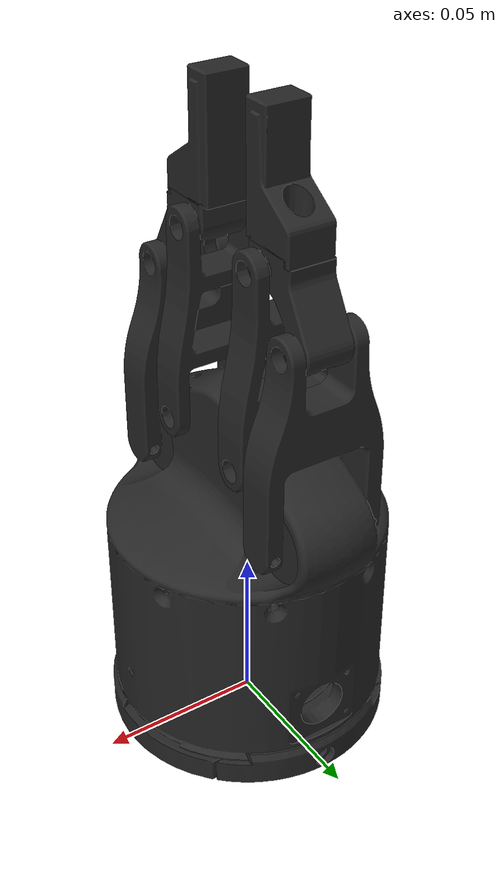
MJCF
<mujoco model="flexiv_grav">
  <compiler angle="radian" meshdir="assets/"/>

  <option impratio="10" cone="elliptic"/>

  <default>
    <default class="grav">
      <mesh scale="0.001 0.001 0.001"/>
      <joint solreflimit="0.005" solimplimit="0.95 0.99" armature="0.001" damping="0.02"/>
      <general biastype="affine"/>
      <default class="knuckle">
        <joint range="-0.155 0.7854"/>
      </default>
      <default class="finger">
        <joint range="-0.7854 0.155"/>
      </default>
      <default class="visual">
        <geom type="mesh" contype="0" conaffinity="0" group="2" density="0" material="black"/>
      </default>
      <default class="collision">
        <geom type="mesh" group="3"/>
        <default class="pad">
          <geom type="box" priority="1" solref="0.004" solimp="0.95 0.99" rgba="0.3 0.3 0.3 1"/>
        </default>
      </default>
    </default>
  </default>

  <asset>
    <material name="black" rgba="0.149 0.149 0.149 1"/>
    <mesh name="base" class="grav" file="base.stl" refquat="0.707107 0 0 -0.707107"/>
    <mesh name="base_collision" class="grav" file="base_collision.stl" refquat="0.707107 0 0 -0.707107"/>
    <mesh name="outer_bar" class="grav" file="outer_bar.stl" refquat="0.707107 0 0 -0.707107"/>
    <mesh name="outer_bar_collision" class="grav" file="outer_bar_collision.stl" refquat="0.707107 0 0 -0.707107"/>
    <mesh name="inner_bar" class="grav" file="inner_bar.stl" refquat="0.707107 0 0 -0.707107"/>
    <mesh name="inner_bar_collision" class="grav" file="inner_bar_collision.stl" refquat="0.707107 0 0 -0.707107"/>
    <mesh name="finger_mount" class="grav" file="finger_mount.stl" refquat="0.707107 0 0 -0.707107"/>
    <mesh name="finger_tip" class="grav" file="finger_tip.obj" refquat="0.707107 0 0 -0.707107"/>
    <mesh name="finger_tip_collision" class="grav" file="finger_tip_collision.stl" refquat="0.707107 0 0 -0.707107"/>
  </asset>

  <worldbody>
    <body name="base" childclass="grav">
      <inertial pos="0 0 0.057" mass="1.05" diaginertia="0.003 0.003 0.001"/>
      <geom class="visual" mesh="base"/>
      <geom class="collision" mesh="base_collision"/>
      <site name="grav_tcp" pos="0 0 0.15" size="0.002" group="5"/>
      <site name="closed_fingers_tcp" pos="0 0 0.2" size="0.002" group="5"/>
      <body name="left_outer_bar" pos="0 -0.0325 0.0825">
        <inertial pos="0 0 0.029" mass="0.03" diaginertia="1e-05 1e-05 2e-06"/>
        <joint name="left_outer_knuckle_joint" class="knuckle" pos="0 0 0" axis="1 0 0"/>
        <geom class="visual" mesh="outer_bar"/>
        <geom class="collision" mesh="outer_bar_collision"/>
        <body name="left_finger_mount" pos="0 0 0.058">
          <inertial pos="0 0.008 0.01" mass="0.01" diaginertia="2e-06 2e-06 1e-06"/>
          <joint name="left_inner_finger_joint" class="finger" pos="0 0 0" axis="1 0 0"/>
          <geom class="visual" mesh="finger_mount"/>
          <body name="left_finger_tip" pos="0 0.01 0.0235">
            <inertial pos="0 0.005 0.018" mass="0.01" diaginertia="2e-06 2e-06 1e-06"/>
            <geom class="visual" mesh="finger_tip"/>
            <geom class="collision" mesh="finger_tip_collision"/>
            <geom name="left_pad1" class="pad" size="0.007 0.001 0.009" pos="0 0.0125 0.009"/>
            <geom name="left_pad2" class="pad" size="0.007 0.001 0.009" pos="0 0.0125 0.027"/>
            <site name="left_finger_tcp" pos="0 0.0135 0.036" size="0.002" group="5"/>
          </body>
        </body>
      </body>
      <body name="left_inner_bar" pos="0 -0.0165 0.0995">
        <inertial pos="0 0 0.029" mass="0.03" diaginertia="1e-05 1e-05 2e-06"/>
        <joint name="left_inner_knuckle_joint" class="knuckle" pos="0 0 0" axis="1 0 0"/>
        <geom class="visual" mesh="inner_bar"/>
        <geom class="collision" mesh="inner_bar_collision"/>
      </body>
      <body name="right_outer_bar" pos="0 0.0325 0.0825" quat="0 0 0 1">
        <inertial pos="0 0 0.029" mass="0.03" diaginertia="1e-05 1e-05 2e-06"/>
        <joint name="right_outer_knuckle_joint" class="knuckle" pos="0 0 0" axis="1 0 0"/>
        <geom class="visual" mesh="outer_bar"/>
        <geom class="collision" mesh="outer_bar_collision"/>
        <body name="right_finger_mount" pos="0 0 0.058">
          <inertial pos="0 0.008 0.01" mass="0.01" diaginertia="2e-06 2e-06 1e-06"/>
          <joint name="right_inner_finger_joint" class="finger" pos="0 0 0" axis="1 0 0"/>
          <geom class="visual" mesh="finger_mount"/>
          <body name="right_finger_tip" pos="0 0.01 0.0235">
            <inertial pos="0 0.005 0.018" mass="0.01" diaginertia="2e-06 2e-06 1e-06"/>
            <geom class="visual" mesh="finger_tip"/>
            <geom class="collision" mesh="finger_tip_collision"/>
            <geom name="right_pad1" class="pad" size="0.007 0.001 0.009" pos="0 0.0125 0.009"/>
            <geom name="right_pad2" class="pad" size="0.007 0.001 0.009" pos="0 0.0125 0.027"/>
            <site name="right_finger_tcp" pos="0 0.0135 0.036" size="0.002" group="5"/>
          </body>
        </body>
      </body>
      <body name="right_inner_bar" pos="0 0.0165 0.0995" quat="0 0 0 1">
        <inertial pos="0 0 0.029" mass="0.03" diaginertia="1e-05 1e-05 2e-06"/>
        <joint name="right_inner_knuckle_joint" class="knuckle" pos="0 0 0" axis="1 0 0"/>
        <geom class="visual" mesh="inner_bar"/>
        <geom class="collision" mesh="inner_bar_collision"/>
      </body>
    </body>
  </worldbody>

  <contact>
    <exclude body1="base" body2="left_outer_bar"/>
    <exclude body1="base" body2="left_inner_bar"/>
    <exclude body1="base" body2="right_outer_bar"/>
    <exclude body1="base" body2="right_inner_bar"/>
    <exclude body1="left_outer_bar" body2="left_inner_bar"/>
    <exclude body1="left_finger_tip" body2="left_inner_bar"/>
    <exclude body1="right_outer_bar" body2="right_inner_bar"/>
    <exclude body1="right_finger_tip" body2="right_inner_bar"/>
  </contact>

  <equality>
    <joint joint1="right_outer_knuckle_joint" joint2="left_outer_knuckle_joint" polycoef="0 1 0 0 0" solref="0.005"
      solimp="0.95 0.99"/>
    <joint joint1="left_inner_knuckle_joint" joint2="left_outer_knuckle_joint" polycoef="0 1 0 0 0" solref="0.005"
      solimp="0.95 0.99"/>
    <joint joint1="right_inner_knuckle_joint" joint2="right_outer_knuckle_joint" polycoef="0 1 0 0 0" solref="0.005"
      solimp="0.95 0.99"/>
    <joint joint1="left_inner_finger_joint" joint2="left_outer_knuckle_joint" polycoef="0 -1 0 0 0" solref="0.005"
      solimp="0.95 0.99"/>
    <joint joint1="right_inner_finger_joint" joint2="right_outer_knuckle_joint" polycoef="0 -1 0 0 0" solref="0.005"
      solimp="0.95 0.99"/>
  </equality>

  <!--
    The tendon splits the actuator force equally between both knuckle joints so that the
    equality constraint only has to correct small asymmetries. Its length is the knuckle angle.
  -->
  <tendon>
    <fixed name="split">
      <joint joint="left_outer_knuckle_joint" coef="0.5"/>
      <joint joint="right_outer_knuckle_joint" coef="0.5"/>
    </fixed>
  </tendon>

  <actuator>
    <general name="fingers_actuator" class="grav" tendon="split" ctrlrange="0 0.1" forcerange="-5 5" gainprm="188.08"
      biasprm="-3.1 -20 -1"/>
  </actuator>
</mujoco>
